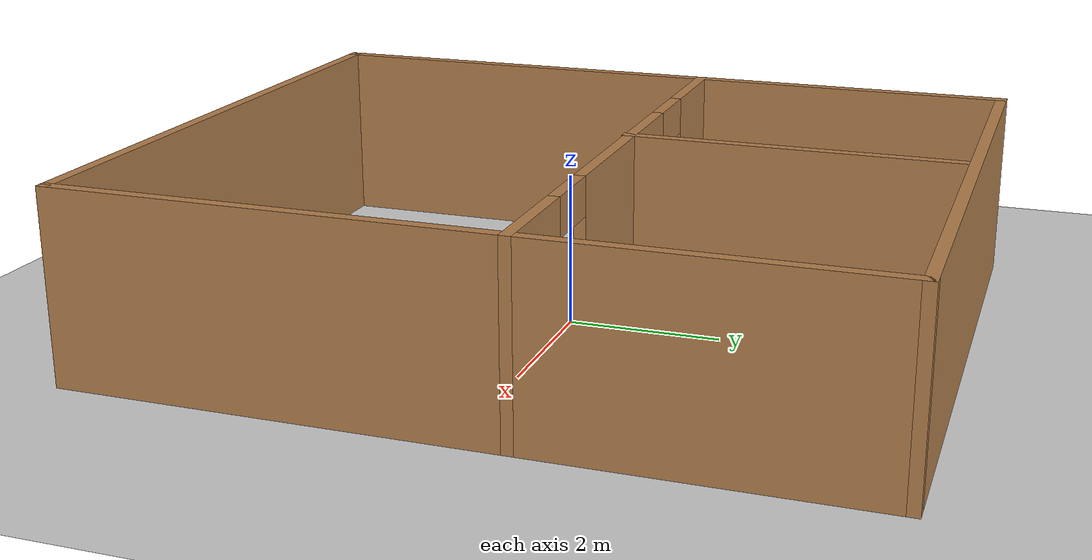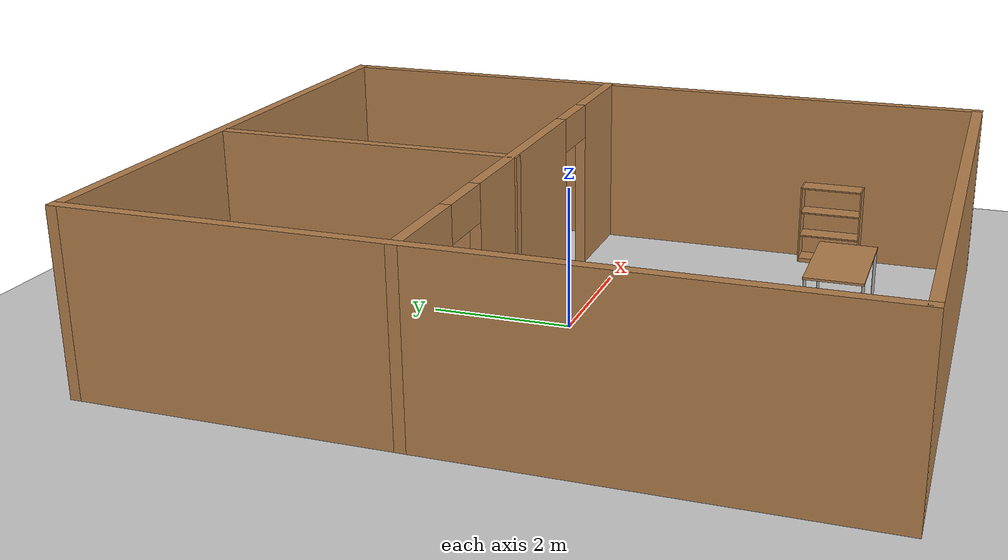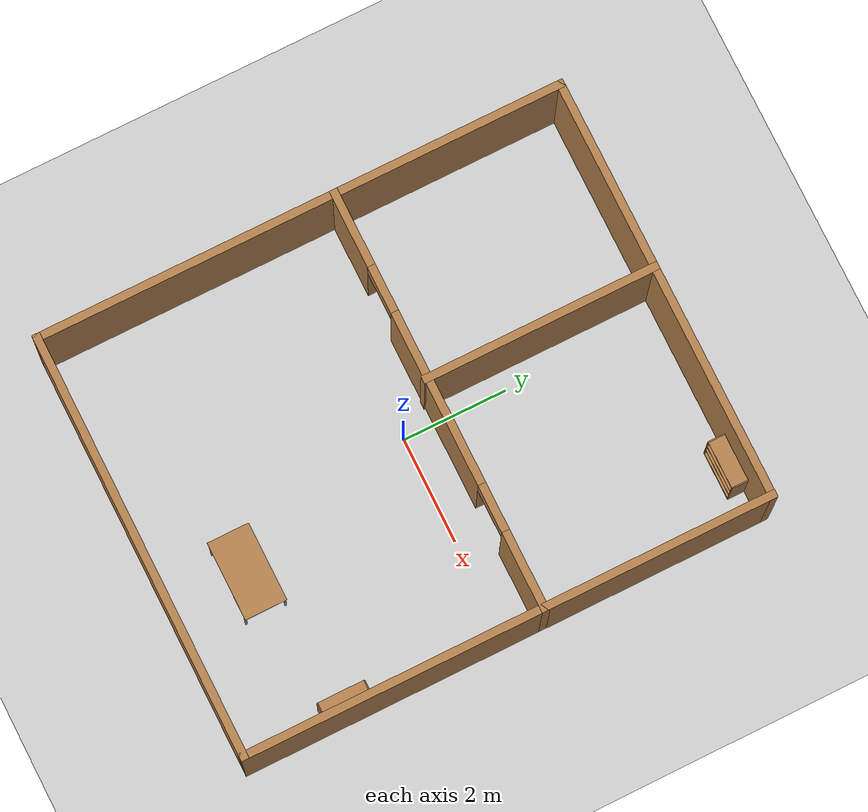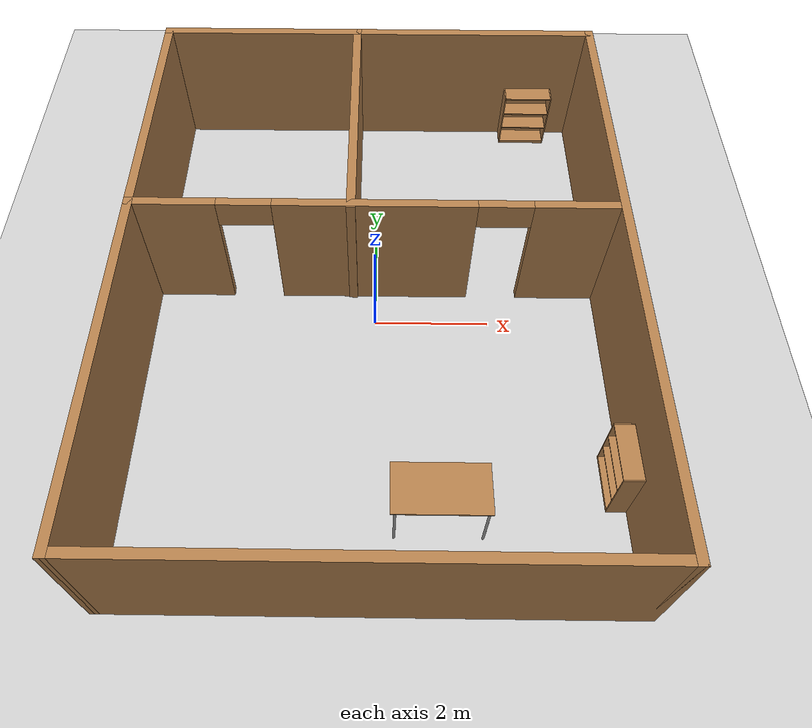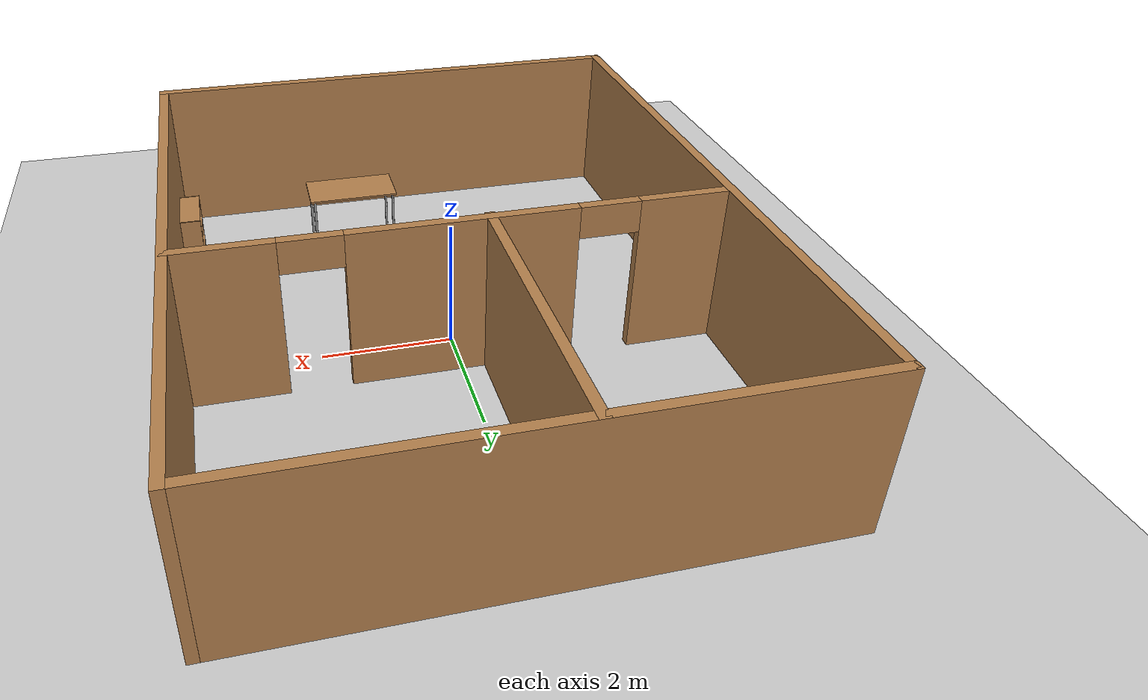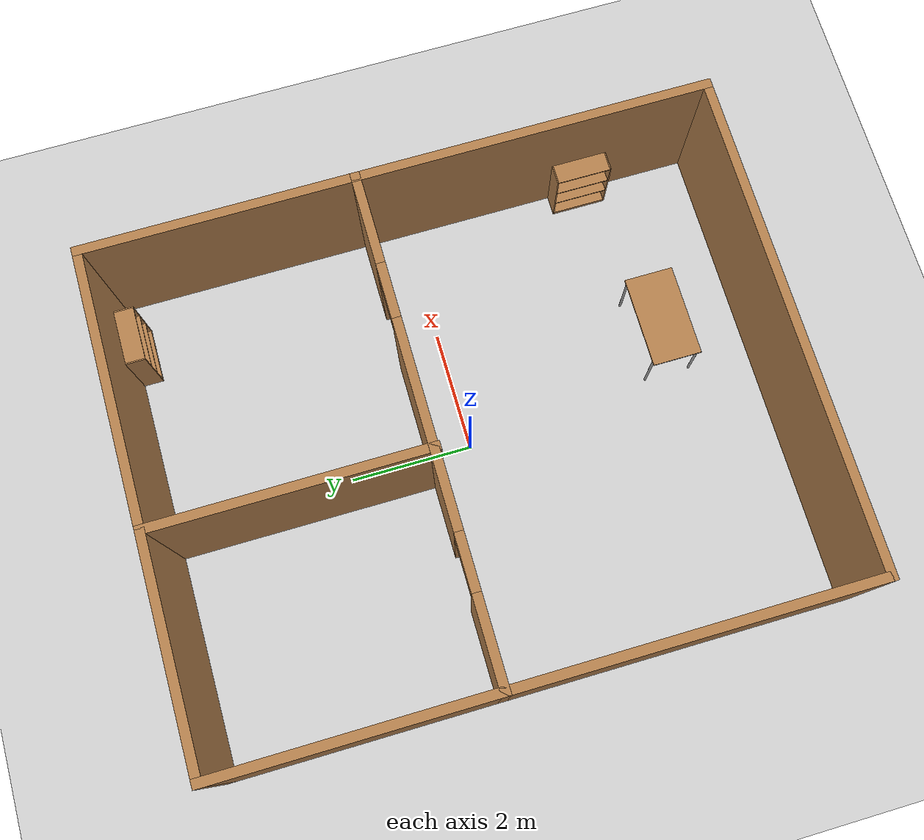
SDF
<sdf version="1.6">
 <world name="default">
  <light name="sun" type="directional">
   <pose>0 0 15 0 -0 0</pose>
   <diffuse>0.8 0.8 0.8 1</diffuse>
   <specular>0.2 0.2 0.2 1</specular>
   <attenuation>
    <range>1000</range>
    <constant>0.9</constant>
    <linear>0.01</linear>
    <quadratic>0.001</quadratic>
   </attenuation>
   <direction>-0.5 0.1 -0.9</direction>
  </light>
  <model name="ground_plane">
   <static>1</static>
   <link name="link">
    <collision name="collision">
     <geometry><plane><normal>0 0 1</normal><size>100 100</size></plane></geometry>
     <surface><friction><ode><mu>100</mu><mu2>50</mu2></ode></friction></surface>
    </collision>
    <visual name="visual">
     <cast_shadows>0</cast_shadows>
     <geometry><plane><normal>0 0 1</normal><size>100 100</size></plane></geometry>
     <material>
      <script><uri>file://media/materials/scripts/gazebo.material</uri><name>Gazebo/Grey</name></script>
     </material>
    </visual>
   </link>
  </model>
  <gravity>0 0 -9.8</gravity>
  <magnetic_field>6e-06 2.3e-05 -4.2e-05</magnetic_field>
  <atmosphere type="adiabatic"/>
  <physics name="default_physics" default="0" type="ode">
   <max_step_size>0.001</max_step_size>
   <real_time_factor>1</real_time_factor>
   <real_time_update_rate>1000</real_time_update_rate>
  </physics>
  <scene><ambient>0.4 0.4 0.4 1</ambient><background>0.7 0.7 0.7 1</background><shadows>1</shadows></scene>
  <spherical_coordinates>
   <surface_model>EARTH_WGS84</surface_model>
   <latitude_deg>0</latitude_deg>
   <longitude_deg>0</longitude_deg>
   <elevation>0</elevation>
   <heading_deg>0</heading_deg>
  </spherical_coordinates>
  <model name="my_model">
   <link name="Wall_0">
    <collision name="Wall_0_Collision">
     <geometry><box><size>10.15 0.15 2.5</size></box></geometry>
     <pose>0 0 1.25 0 -0 0</pose>
    </collision>
    <visual name="Wall_0_Visual">
     <pose>0 0 1.25 0 -0 0</pose>
     <geometry><box><size>10.15 0.15 2.5</size></box></geometry>
     <material>
      <script><uri>file://media/materials/scripts/gazebo.material</uri><name>Gazebo/Wood</name></script>
      <ambient>1 1 1 1</ambient>
     </material>
     <meta><layer>0</layer></meta>
    </visual>
    <pose>-4 0 0 0 0 -1.5708</pose>
   </link>
   <link name="Wall_1">
    <collision name="Wall_1_Collision">
     <geometry><box><size>8.15 0.15 2.5</size></box></geometry>
     <pose>0 0 1.25 0 -0 0</pose>
    </collision>
    <visual name="Wall_1_Visual">
     <pose>0 0 1.25 0 -0 0</pose>
     <geometry><box><size>8.15 0.15 2.5</size></box></geometry>
     <material>
      <script><uri>file://media/materials/scripts/gazebo.material</uri><name>Gazebo/Wood</name></script>
      <ambient>1 1 1 1</ambient>
     </material>
     <meta><layer>0</layer></meta>
    </visual>
    <pose>0 -5 0 0 -0 0</pose>
   </link>
   <link name="Wall_2">
    <collision name="Wall_2_Collision">
     <geometry><box><size>10.15 0.15 2.5</size></box></geometry>
     <pose>0 0 1.25 0 -0 0</pose>
    </collision>
    <visual name="Wall_2_Visual">
     <pose>0 0 1.25 0 -0 0</pose>
     <geometry><box><size>10.15 0.15 2.5</size></box></geometry>
     <material>
      <script><uri>file://media/materials/scripts/gazebo.material</uri><name>Gazebo/Wood</name></script>
      <ambient>1 1 1 1</ambient>
     </material>
     <meta><layer>0</layer></meta>
    </visual>
    <pose>4 0 0 0 -0 1.5708</pose>
   </link>
   <link name="Wall_3">
    <collision name="Wall_3_Collision">
     <geometry><box><size>8.15 0.15 2.5</size></box></geometry>
     <pose>0 0 1.25 0 -0 0</pose>
    </collision>
    <visual name="Wall_3_Visual">
     <pose>0 0 1.25 0 -0 0</pose>
     <geometry><box><size>8.15 0.15 2.5</size></box></geometry>
     <material>
      <script><uri>file://media/materials/scripts/gazebo.material</uri><name>Gazebo/Wood</name></script>
      <ambient>1 1 1 1</ambient>
     </material>
     <meta><layer>0</layer></meta>
    </visual>
    <pose>0 5 0 0 -0 3.14159</pose>
   </link>
   <link name="Wall_5">
    <pose>0 0.665 0 0 -0 0</pose>
    <visual name="Wall_5_Visual_0">
     <pose>-3.33241 0 1.25 0 -0 0</pose>
     <geometry><box><size>1.48518 0.15 2.5</size></box></geometry>
     <material>
      <script><uri>file://media/materials/scripts/gazebo.material</uri><name>Gazebo/Wood</name></script>
      <ambient>1 1 1 1</ambient>
     </material>
     <meta><layer>0</layer></meta>
    </visual>
    <collision name="Wall_5_Collision_0">
     <geometry><box><size>1.48518 0.15 2.5</size></box></geometry>
     <pose>-3.33241 0 1.25 0 -0 0</pose>
    </collision>
    <visual name="Wall_5_Visual_1">
     <pose>-0.0251 0 1.25 0 -0 0</pose>
     <geometry><box><size>3.32943 0.15 2.5</size></box></geometry>
     <material>
      <script><uri>file://media/materials/scripts/gazebo.material</uri><name>Gazebo/Wood</name></script>
      <ambient>1 1 1 1</ambient>
     </material>
     <meta><layer>0</layer></meta>
    </visual>
    <collision name="Wall_5_Collision_1">
     <geometry><box><size>3.32943 0.15 2.5</size></box></geometry>
     <pose>-0.0251 0 1.25 0 -0 0</pose>
    </collision>
    <visual name="Wall_5_Visual_2">
     <pose>3.30731 0 1.25 0 -0 0</pose>
     <geometry><box><size>1.53538 0.15 2.5</size></box></geometry>
     <material>
      <script><uri>file://media/materials/scripts/gazebo.material</uri><name>Gazebo/Wood</name></script>
      <ambient>1 1 1 1</ambient>
     </material>
     <meta><layer>0</layer></meta>
    </visual>
    <collision name="Wall_5_Collision_2">
     <geometry><box><size>1.53538 0.15 2.5</size></box></geometry>
     <pose>3.30731 0 1.25 0 -0 0</pose>
    </collision>
    <visual name="Wall_5_Visual_3">
     <pose>-2.13982 0 2.25 0 -0 0</pose>
     <geometry><box><size>0.9 0.15 0.5</size></box></geometry>
     <material>
      <script><uri>file://media/materials/scripts/gazebo.material</uri><name>Gazebo/Wood</name></script>
      <ambient>1 1 1 1</ambient>
     </material>
     <meta><layer>0</layer></meta>
    </visual>
    <collision name="Wall_5_Collision_3">
     <geometry><box><size>0.9 0.15 0.5</size></box></geometry>
     <pose>-2.13982 0 2.25 0 -0 0</pose>
    </collision>
    <visual name="Wall_5_Visual_4">
     <pose>2.08962 0 2.25 0 -0 0</pose>
     <geometry><box><size>0.9 0.15 0.5</size></box></geometry>
     <material>
      <script><uri>file://media/materials/scripts/gazebo.material</uri><name>Gazebo/Wood</name></script>
      <ambient>1 1 1 1</ambient>
     </material>
     <meta><layer>0</layer></meta>
    </visual>
    <collision name="Wall_5_Collision_4">
     <geometry><box><size>0.9 0.15 0.5</size></box></geometry>
     <pose>2.08962 0 2.25 0 -0 0</pose>
    </collision>
   </link>
   <link name="Wall_7">
    <collision name="Wall_7_Collision">
     <geometry><box><size>4.512 0.15 2.5</size></box></geometry>
     <pose>0 0 1.25 0 -0 0</pose>
    </collision>
    <visual name="Wall_7_Visual">
     <pose>0 0 1.25 0 -0 0</pose>
     <geometry><box><size>4.512 0.15 2.5</size></box></geometry>
     <material>
      <script><uri>file://media/materials/scripts/gazebo.material</uri><name>Gazebo/Wood</name></script>
      <ambient>1 1 1 1</ambient>
     </material>
     <meta><layer>0</layer></meta>
    </visual>
    <pose>-0.411 2.819 0 0 -0 1.5708</pose>
   </link>
   <static>1</static>
  </model>
  <model name="bookshelf">
   <static>1</static>
   <link name="link">
    <inertial><mass>1</mass></inertial>
    <collision name="back">
     <pose>0 0.005 0.6 0 -0 0</pose>
     <geometry><box><size>0.9 0.01 1.2</size></box></geometry>
    </collision>
    <visual name="visual1">
     <pose>0 0.005 0.6 0 -0 0</pose>
     <geometry><box><size>0.9 0.01 1.2</size></box></geometry>
     <material>
      <script><uri>file://media/materials/scripts/gazebo.material</uri><name>Gazebo/Wood</name></script>
     </material>
    </visual>
    <collision name="left_side">
     <pose>0.45 -0.195 0.6 0 -0 0</pose>
     <geometry><box><size>0.02 0.4 1.2</size></box></geometry>
    </collision>
    <visual name="visual2">
     <pose>0.45 -0.195 0.6 0 -0 0</pose>
     <geometry><box><size>0.02 0.4 1.2</size></box></geometry>
     <material>
      <script><uri>file://media/materials/scripts/gazebo.material</uri><name>Gazebo/Wood</name></script>
     </material>
    </visual>
    <collision name="right_side">
     <pose>-0.45 -0.195 0.6 0 -0 0</pose>
     <geometry><box><size>0.02 0.4 1.2</size></box></geometry>
    </collision>
    <visual name="visual3">
     <pose>-0.45 -0.195 0.6 0 -0 0</pose>
     <geometry><box><size>0.02 0.4 1.2</size></box></geometry>
     <material>
      <script><uri>file://media/materials/scripts/gazebo.material</uri><name>Gazebo/Wood</name></script>
     </material>
    </visual>
    <collision name="bottom">
     <pose>0 -0.195 0.03 0 -0 0</pose>
     <geometry><box><size>0.88 0.4 0.06</size></box></geometry>
    </collision>
    <visual name="visual4">
     <pose>0 -0.195 0.03 0 -0 0</pose>
     <geometry><box><size>0.88 0.4 0.06</size></box></geometry>
     <material>
      <script><uri>file://media/materials/scripts/gazebo.material</uri><name>Gazebo/Wood</name></script>
     </material>
    </visual>
    <collision name="top">
     <pose>0 -0.195 1.19 0 -0 0</pose>
     <geometry><box><size>0.88 0.4 0.02</size></box></geometry>
    </collision>
    <visual name="visual5">
     <pose>0 -0.195 1.19 0 -0 0</pose>
     <geometry><box><size>0.88 0.4 0.02</size></box></geometry>
     <material>
      <script><uri>file://media/materials/scripts/gazebo.material</uri><name>Gazebo/Wood</name></script>
     </material>
    </visual>
    <collision name="low_shelf">
     <pose>0 -0.195 0.43 0 -0 0</pose>
     <geometry><box><size>0.88 0.4 0.02</size></box></geometry>
    </collision>
    <visual name="visual6">
     <pose>0 -0.195 0.43 0 -0 0</pose>
     <geometry><box><size>0.88 0.4 0.02</size></box></geometry>
     <material>
      <script><uri>file://media/materials/scripts/gazebo.material</uri><name>Gazebo/Wood</name></script>
     </material>
    </visual>
    <collision name="high_shelf">
     <pose>0 -0.195 0.8 0 -0 0</pose>
     <geometry><box><size>0.88 0.4 0.02</size></box></geometry>
    </collision>
    <visual name="visual7">
     <pose>0 -0.195 0.8 0 -0 0</pose>
     <geometry><box><size>0.88 0.4 0.02</size></box></geometry>
     <material>
      <script><uri>file://media/materials/scripts/gazebo.material</uri><name>Gazebo/Wood</name></script>
     </material>
    </visual>
   </link>
   <pose>3 5 0 0 -0 0</pose>
  </model>
  <model name="bookshelf_0">
   <static>1</static>
   <link name="link">
    <inertial><mass>1</mass></inertial>
    <collision name="back">
     <pose>0 0.005 0.6 0 -0 0</pose>
     <geometry><box><size>0.9 0.01 1.2</size></box></geometry>
    </collision>
    <visual name="visual1">
     <pose>0 0.005 0.6 0 -0 0</pose>
     <geometry><box><size>0.9 0.01 1.2</size></box></geometry>
     <material>
      <script><uri>file://media/materials/scripts/gazebo.material</uri><name>Gazebo/Wood</name></script>
     </material>
    </visual>
    <collision name="left_side">
     <pose>0.45 -0.195 0.6 0 -0 0</pose>
     <geometry><box><size>0.02 0.4 1.2</size></box></geometry>
    </collision>
    <visual name="visual2">
     <pose>0.45 -0.195 0.6 0 -0 0</pose>
     <geometry><box><size>0.02 0.4 1.2</size></box></geometry>
     <material>
      <script><uri>file://media/materials/scripts/gazebo.material</uri><name>Gazebo/Wood</name></script>
     </material>
    </visual>
    <collision name="right_side">
     <pose>-0.45 -0.195 0.6 0 -0 0</pose>
     <geometry><box><size>0.02 0.4 1.2</size></box></geometry>
    </collision>
    <visual name="visual3">
     <pose>-0.45 -0.195 0.6 0 -0 0</pose>
     <geometry><box><size>0.02 0.4 1.2</size></box></geometry>
     <material>
      <script><uri>file://media/materials/scripts/gazebo.material</uri><name>Gazebo/Wood</name></script>
     </material>
    </visual>
    <collision name="bottom">
     <pose>0 -0.195 0.03 0 -0 0</pose>
     <geometry><box><size>0.88 0.4 0.06</size></box></geometry>
    </collision>
    <visual name="visual4">
     <pose>0 -0.195 0.03 0 -0 0</pose>
     <geometry><box><size>0.88 0.4 0.06</size></box></geometry>
     <material>
      <script><uri>file://media/materials/scripts/gazebo.material</uri><name>Gazebo/Wood</name></script>
     </material>
    </visual>
    <collision name="top">
     <pose>0 -0.195 1.19 0 -0 0</pose>
     <geometry><box><size>0.88 0.4 0.02</size></box></geometry>
    </collision>
    <visual name="visual5">
     <pose>0 -0.195 1.19 0 -0 0</pose>
     <geometry><box><size>0.88 0.4 0.02</size></box></geometry>
     <material>
      <script><uri>file://media/materials/scripts/gazebo.material</uri><name>Gazebo/Wood</name></script>
     </material>
    </visual>
    <collision name="low_shelf">
     <pose>0 -0.195 0.43 0 -0 0</pose>
     <geometry><box><size>0.88 0.4 0.02</size></box></geometry>
    </collision>
    <visual name="visual6">
     <pose>0 -0.195 0.43 0 -0 0</pose>
     <geometry><box><size>0.88 0.4 0.02</size></box></geometry>
     <material>
      <script><uri>file://media/materials/scripts/gazebo.material</uri><name>Gazebo/Wood</name></script>
     </material>
    </visual>
    <collision name="high_shelf">
     <pose>0 -0.195 0.8 0 -0 0</pose>
     <geometry><box><size>0.88 0.4 0.02</size></box></geometry>
    </collision>
    <visual name="visual7">
     <pose>0 -0.195 0.8 0 -0 0</pose>
     <geometry><box><size>0.88 0.4 0.02</size></box></geometry>
     <material>
      <script><uri>file://media/materials/scripts/gazebo.material</uri><name>Gazebo/Wood</name></script>
     </material>
    </visual>
   </link>
   <pose>4 -3 0 0 0 -1.57079</pose>
  </model>
  <model name="table">
   <static>1</static>
   <link name="link">
    <collision name="surface">
     <pose>0 0 1 0 -0 0</pose>
     <geometry><box><size>1.5 0.8 0.03</size></box></geometry>
     <surface><friction><ode><mu>0.6</mu><mu2>0.6</mu2></ode></friction></surface>
    </collision>
    <visual name="visual1">
     <pose>0 0 1 0 -0 0</pose>
     <geometry><box><size>1.5 0.8 0.03</size></box></geometry>
     <material>
      <script><uri>file://media/materials/scripts/gazebo.material</uri><name>Gazebo/Wood</name></script>
     </material>
    </visual>
    <collision name="front_left_leg">
     <pose>0.68 0.38 0.5 0 -0 0</pose>
     <geometry><cylinder><radius>0.02</radius><length>1</length></cylinder></geometry>
    </collision>
    <visual name="front_left_leg">
     <pose>0.68 0.38 0.5 0 -0 0</pose>
     <geometry><cylinder><radius>0.02</radius><length>1</length></cylinder></geometry>
     <material>
      <script><uri>file://media/materials/scripts/gazebo.material</uri><name>Gazebo/Grey</name></script>
     </material>
    </visual>
    <collision name="front_right_leg">
     <pose>0.68 -0.38 0.5 0 -0 0</pose>
     <geometry><cylinder><radius>0.02</radius><length>1</length></cylinder></geometry>
    </collision>
    <visual name="front_right_leg">
     <pose>0.68 -0.38 0.5 0 -0 0</pose>
     <geometry><cylinder><radius>0.02</radius><length>1</length></cylinder></geometry>
     <material>
      <script><uri>file://media/materials/scripts/gazebo.material</uri><name>Gazebo/Grey</name></script>
     </material>
    </visual>
    <collision name="back_right_leg">
     <pose>-0.68 -0.38 0.5 0 -0 0</pose>
     <geometry><cylinder><radius>0.02</radius><length>1</length></cylinder></geometry>
    </collision>
    <visual name="back_right_leg">
     <pose>-0.68 -0.38 0.5 0 -0 0</pose>
     <geometry><cylinder><radius>0.02</radius><length>1</length></cylinder></geometry>
     <material>
      <script><uri>file://media/materials/scripts/gazebo.material</uri><name>Gazebo/Grey</name></script>
     </material>
    </visual>
    <collision name="back_left_leg">
     <pose>-0.68 0.38 0.5 0 -0 0</pose>
     <geometry><cylinder><radius>0.02</radius><length>1</length></cylinder></geometry>
    </collision>
    <visual name="back_left_leg">
     <pose>-0.68 0.38 0.5 0 -0 0</pose>
     <geometry><cylinder><radius>0.02</radius><length>1</length></cylinder></geometry>
     <material>
      <script><uri>file://media/materials/scripts/gazebo.material</uri><name>Gazebo/Grey</name></script>
     </material>
    </visual>
   </link>
   <pose>1 -3.5161 0 0 -0 0</pose>
  </model>
 </world>
</sdf>
